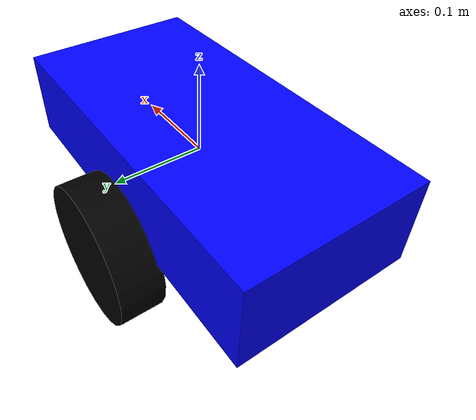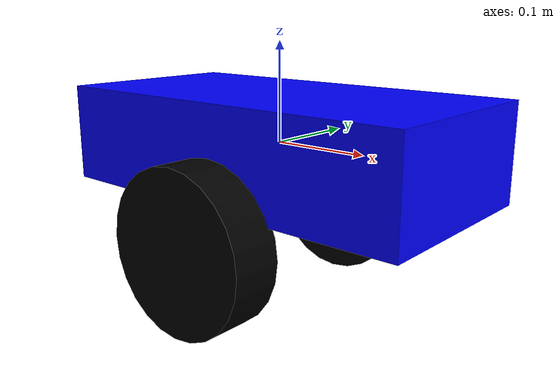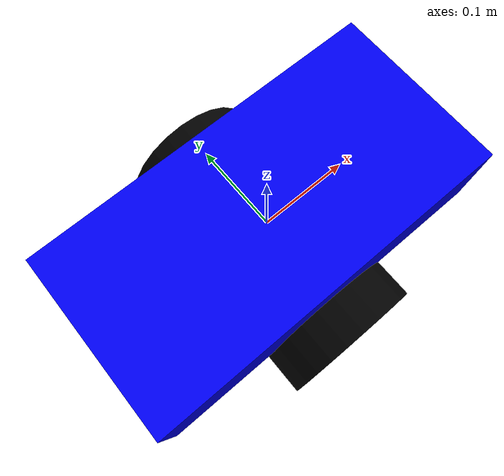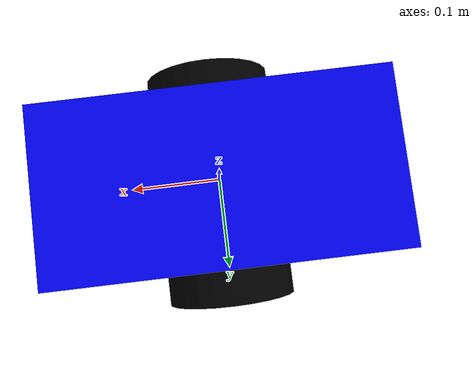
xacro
<?xml version="1.0"?>
<robot name="my_robot" xmlns:xacro="http://www.ros.org/wiki/xacro">
  <!-- 1. 常量定义 -->
  <xacro:property name="box_length" value="0.4" />
  <xacro:property name="box_width" value="0.2" />
  <xacro:property name="box_height" value="0.1" />  <!-- 增加高度 -->

  <!-- 2. 长方体基座连杆 -->
  <link name="base_link">
    <visual>
      <geometry><box size="${box_length} ${box_width} ${box_height}" /></geometry>
      <material name="blue"><color rgba="0 0 1 1" /></material>
    </visual>
    <!-- 车身碰撞检测（无摩擦） -->
    <collision>
      <geometry><box size="${box_length} ${box_width} ${box_height}" /></geometry>
      <surface>
        <friction>
          <ode>
            <mu>0.0</mu>     <!-- 静摩擦系数为0 -->
            <mu2>0.0</mu2>   <!-- 动摩擦系数为0 -->
          </ode>
        </friction>
      </surface>
    </collision>
    <inertial>
      <mass value="3.0" />
      <inertia ixx="0.01" ixy="0.0" ixz="0.0" iyy="0.01" iyz="0.0" izz="0.01" />
    </inertial>
  </link>

  <!-- 左侧车轮连杆 -->
  <link name="left_wheel">
    <visual>
      <geometry><cylinder length="0.05" radius="0.08" /></geometry>
      <material name="black"><color rgba="0 0 0 1" /></material>
    </visual>
    <collision>
      <geometry><cylinder length="0.05" radius="0.08" /></geometry>
      <surface>
        <friction>
          <ode>
            <mu>1000</mu>
            <mu2>500</mu2>
          </ode>
        </friction>
      </surface>
    </collision>
    <inertial>
      <mass value="0.5" />
      <inertia ixx="0.001" ixy="0.0" ixz="0.0" iyy="0.001" iyz="0.0" izz="0.001" />
    </inertial>
  </link>

  <!-- 左侧车轮关节 -->
  <joint name="left_wheel_joint" type="continuous">
    <parent link="base_link" />
    <child link="left_wheel" />
    <origin xyz="0 ${-box_width/2 - 0.02} ${-box_height/2 - 0.03}" rpy="1.570796 0 0" />
    <axis xyz="0 0 1" />
  </joint>

  <!-- 右侧车轮连杆 -->
  <link name="right_wheel">
    <visual>
      <geometry><cylinder length="0.05" radius="0.08" /></geometry>
      <material name="black"><color rgba="0 0 0 1" /></material>
    </visual>
    <collision>
      <geometry><cylinder length="0.05" radius="0.08" /></geometry>
      <surface>
        <friction>
          <ode>
            <mu>1000</mu>
            <mu2>500</mu2>
          </ode>
        </friction>
      </surface>
    </collision>
    <inertial>
      <mass value="0.5" />
      <inertia ixx="0.001" ixy="0.0" ixz="0.0" iyy="0.001" iyz="0.0" izz="0.001" />
    </inertial>
  </link>

  <!-- 右侧车轮关节 -->
  <joint name="right_wheel_joint" type="continuous">
    <parent link="base_link" />
    <child link="right_wheel" />
    <origin xyz="0 ${box_width/2 + 0.02} ${-box_height/2 - 0.03}" rpy="1.570796 0 0" />
    <axis xyz="0 0 1" />
  </joint>

  <!-- 3. Gazebo插件配置 -->
  <gazebo>
    <material>Gazebo/Blue</material>

    <!-- 关节状态发布插件 -->
    <plugin name="joint_state_publisher" filename="libgazebo_ros_joint_state_publisher.so">
      <ros>
        <namespace>/</namespace>
        <remapping>joint_states:=/joint_states</remapping>
      </ros>
      <update_rate>50.0</update_rate>
      <joint_name>left_wheel_joint</joint_name>
      <joint_name>right_wheel_joint</joint_name>
    </plugin>

    <!-- 差速驱动插件 -->
    <plugin name="diff_drive_controller" filename="libgazebo_ros_diff_drive.so">
      <ros>
        <namespace>/</namespace>
        <remapping>cmd_vel:=/cmd_vel</remapping>
        <remapping>odom:=/odom</remapping>
      </ros>
      <update_rate>100.0</update_rate>
      <robot_base_frame>base_link</robot_base_frame>
      <left_joint>left_wheel_joint</left_joint>
      <right_joint>right_wheel_joint</right_joint>

      <wheel_separation>${box_width + 0.05}</wheel_separation>
      <wheel_diameter>${0.16}</wheel_diameter>
      <torque>20</torque>
      <max_wheel_acceleration>50.0</max_wheel_acceleration>
      <wheel_acceleration>30.0</wheel_acceleration>
      <command_topic>/cmd_vel</command_topic>
      <odometry_topic>/odom</odometry_topic>
      <odometry_frame>odom</odometry_frame>
      <publish_wheel_tf>false</publish_wheel_tf>
      <publish_odom_tf>true</publish_odom_tf>
      <publish_wheel_joint_state>false</publish_wheel_joint_state>
      <legacy_mode>false</legacy_mode>
      <use_encoders>false</use_encoders>
    </plugin>
  </gazebo>
  <!-- 车身空气阻力配置 -->
  <gazebo reference="base_link">
    <damping>
      <linear>0.08</linear>   <!-- 线性阻尼系数（类似空气阻力） -->
      <angular>0.03</angular> <!-- 角阻尼系数 -->
    </damping>
    <sensor name="imu_sensor" type="imu">
      <plugin name="imu_plugin" filename="libgazebo_ros_imu_sensor.so">
        <remapping>~/out:=/imu</remapping>
        <frame_name>base_link</frame_name>
      </plugin>
      <always_on>true</always_on>
      <update_rate>100.0</update_rate>
    </sensor>
  </gazebo>

  <!-- 左侧车轮空气阻力配置 -->
  <gazebo reference="left_wheel">
    <damping>
      <linear>0.02</linear>   <!-- 车轮线性阻尼 -->
      <angular>0.01</angular> <!-- 车轮角阻尼 -->
    </damping>
  </gazebo>

  <!-- 右侧车轮空气阻力配置 -->
  <gazebo reference="right_wheel">
    <damping>
      <linear>0.02</linear>   <!-- 车轮线性阻尼 -->
      <angular>0.01</angular> <!-- 车轮角阻尼 -->
    </damping>
  </gazebo>
</robot>
